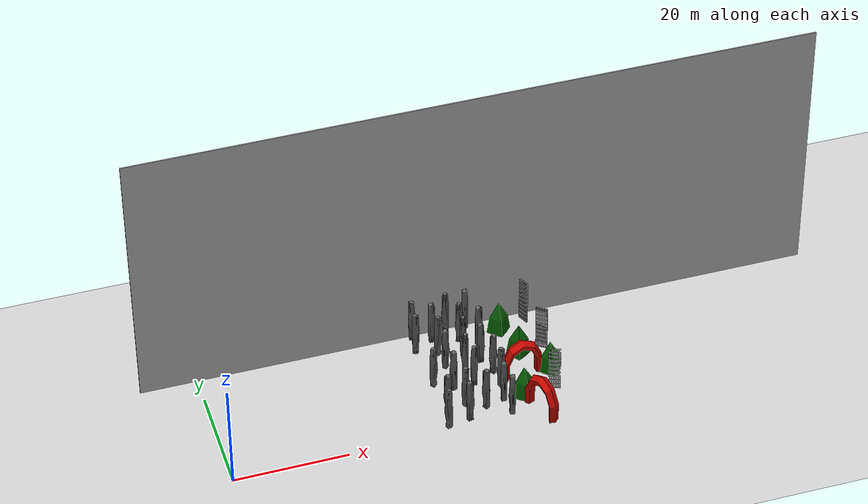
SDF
<sdf version="1.4">
 <world name="default">
  <model name="ground_plane">
   <static>1</static>
   <link name="link">
    <collision name="collision">
     <geometry><plane><normal>0 0 1</normal><size>1000 1000</size></plane></geometry>
     <surface>
      <contact><collide_bitmask>65535</collide_bitmask></contact>
      <friction><ode><mu>100</mu><mu2>50</mu2></ode></friction>
     </surface>
    </collision>
    <visual name="visual">
     <cast_shadows>0</cast_shadows>
     <geometry><plane><normal>0 0 1</normal><size>1000 1000</size></plane></geometry>
    </visual>
   </link>
  </model>
  <model name="wall_left">
   <static>1</static>
   <link name="link">
    <pose>0 0 25.0 0 0 0</pose>
    <collision name="collision"><geometry><box><size>120.0 0.2 50.0</size></box></geometry></collision>
    <visual name="visual">
     <cast_shadows>0</cast_shadows>
     <geometry><box><size>120.0 0.2 50.0</size></box></geometry>
    </visual>
   </link>
   <pose>50.0 25.0 0 0 0 0</pose>
  </model>
  <include><uri>model://sun</uri></include>
  <include>
   <name>columnSimple Stone138</name>
   <uri>model://Simple Stone</uri>
   <pose>37.91572570800781 1.6116981506347656 0 0 0 1.9437472101</pose>
   <static>true</static>
  </include>
  <include>
   <name>columnSimple Stone139</name>
   <uri>model://Simple Stone</uri>
   <pose>38.768402099609375 5.009853363037109 0 0 0 0.507222631463</pose>
   <static>true</static>
  </include>
  <include>
   <name>columnSimple Stone140</name>
   <uri>model://Simple Stone</uri>
   <pose>38.34856033325195 12.01529312133789 0 0 0 3.84182032126</pose>
   <static>true</static>
  </include>
  <include>
   <name>columnSimple Stone142</name>
   <uri>model://Simple Stone</uri>
   <pose>37.79338073730469 20.840438842773438 0 0 0 4.15083269572</pose>
   <static>true</static>
  </include>
  <include>
   <name>columnSimple Stone143</name>
   <uri>model://Simple Stone</uri>
   <pose>38.07575225830078 24.332542419433594 0 0 0 1.38869625464</pose>
   <static>true</static>
  </include>
  <include>
   <name>columnSimple Stone148</name>
   <uri>model://Simple Stone</uri>
   <pose>41.886016845703125 2.3336048126220703 0 0 0 5.01673169537</pose>
   <static>true</static>
  </include>
  <include>
   <name>columnSimple Stone149</name>
   <uri>model://Simple Stone</uri>
   <pose>41.39558029174805 10.286079406738281 0 0 0 0.220111407142</pose>
   <static>true</static>
  </include>
  <include>
   <name>columnSimple Stone150</name>
   <uri>model://Simple Stone</uri>
   <pose>41.6441535949707 15.833484649658203 0 0 0 5.52213010074</pose>
   <static>true</static>
  </include>
  <include>
   <name>columnSimple Stone151</name>
   <uri>model://Simple Stone</uri>
   <pose>41.34075164794922 19.32382583618164 0 0 0 3.60255119734</pose>
   <static>true</static>
  </include>
  <include>
   <name>columnSimple Stone152</name>
   <uri>model://Simple Stone</uri>
   <pose>41.23871994018555 22.82583999633789 0 0 0 4.7948572546</pose>
   <static>true</static>
  </include>
  <include>
   <name>columnSimple Stone158</name>
   <uri>model://Simple Stone</uri>
   <pose>42.17572784423828 5.825105667114258 0 0 0 3.61110821622</pose>
   <static>true</static>
  </include>
  <include>
   <name>columnSimple Stone159</name>
   <uri>model://Simple Stone</uri>
   <pose>44.53394317626953 13.852672576904297 0 0 0 2.5824397631</pose>
   <static>true</static>
  </include>
  <include>
   <name>columnSimple Stone160</name>
   <uri>model://Simple Stone</uri>
   <pose>44.22773742675781 24.653484344482422 0 0 0 2.55722843927</pose>
   <static>true</static>
  </include>
  <include>
   <name>columnSimple Stone165</name>
   <uri>model://Simple Stone</uri>
   <pose>45.344566345214844 4.330787658691406 0 0 0 0.578428658794</pose>
   <static>true</static>
  </include>
  <include>
   <name>columnSimple Stone166</name>
   <uri>model://Simple Stone</uri>
   <pose>45.10379409790039 10.395824432373047 0 0 0 4.45806937617</pose>
   <static>true</static>
  </include>
  <include>
   <name>columnSimple Stone167</name>
   <uri>model://Simple Stone</uri>
   <pose>45.453643798828125 18.03506851196289 0 0 0 2.88668355459</pose>
   <static>true</static>
  </include>
  <include>
   <name>columnSimple Stone168</name>
   <uri>model://Simple Stone</uri>
   <pose>45.798030853271484 21.521602630615234 0 0 0 2.45231163621</pose>
   <static>true</static>
  </include>
  <include>
   <name>columnSimple Stone173</name>
   <uri>model://Simple Stone</uri>
   <pose>49.15650177001953 1.7550048828125 0 0 0 6.17506014726</pose>
   <static>true</static>
  </include>
  <include>
   <name>columnSimple Stone174</name>
   <uri>model://Simple Stone</uri>
   <pose>48.73676681518555 5.233270645141602 0 0 0 6.24238044853</pose>
   <static>true</static>
  </include>
  <include>
   <name>columnSimple Stone175</name>
   <uri>model://Simple Stone</uri>
   <pose>49.35905456542969 8.68106460571289 0 0 0 3.58823346759</pose>
   <static>true</static>
  </include>
  <include>
   <name>columnSimple Stone176</name>
   <uri>model://Simple Stone</uri>
   <pose>49.03737258911133 12.16976547241211 0 0 0 0.789804092318</pose>
   <static>true</static>
  </include>
  <include>
   <name>columnSimple Stone177</name>
   <uri>model://Simple Stone</uri>
   <pose>47.826324462890625 15.457298278808594 0 0 0 4.83918449431</pose>
   <static>true</static>
  </include>
  <include>
   <name>columnSimple Stone178</name>
   <uri>model://Simple Stone</uri>
   <pose>48.77776336669922 19.678855895996094 0 0 0 5.06522713223</pose>
   <static>true</static>
  </include>
  <include>
   <name>columnSimple Stone179</name>
   <uri>model://Simple Stone</uri>
   <pose>47.72923278808594 24.53502655029297 0 0 0 6.26416250436</pose>
   <static>true</static>
  </include>
  <include>
   <name>mixedSimple Pyramid4</name>
   <uri>model://Simple Pyramid</uri>
   <pose>52.378965854644775 5.40666389465332 0 0 0 3.27412428061</pose>
   <static>true</static>
  </include>
  <include>
   <name>mixedSimple Pyramid5</name>
   <uri>model://Simple Pyramid</uri>
   <pose>53.11475992202759 22.111785888671875 0 0 0 3.16630532886</pose>
   <static>true</static>
  </include>
  <include>
   <name>mixedSimple U9</name>
   <uri>model://Simple U</uri>
   <pose>54.0579514503479 0.69488525390625 0 0 0 1.94537556084</pose>
   <static>true</static>
  </include>
  <include>
   <name>mixedSimple U10</name>
   <uri>model://Simple U</uri>
   <pose>53.575544595718384 10.266521453857422 0 0 0 0.126301481004</pose>
   <static>true</static>
  </include>
  <include>
   <name>mixedSimple Pyramid11</name>
   <uri>model://Simple Pyramid</uri>
   <pose>54.70700645446777 15.617908477783203 0 0 0 2.92536089931</pose>
   <static>true</static>
  </include>
  <include>
   <name>mixedfence_high16</name>
   <uri>model://fence_high</uri>
   <pose>58.73498725891113 4.830774307250977 0 0 0 1.2081727382</pose>
   <static>true</static>
  </include>
  <include>
   <name>mixedSimple Pyramid17</name>
   <uri>model://Simple Pyramid</uri>
   <pose>58.57789707183838 10.103748321533203 0 0 0 4.74789160868</pose>
   <static>true</static>
  </include>
  <include>
   <name>mixedfence_high18</name>
   <uri>model://fence_high</uri>
   <pose>59.672165870666504 14.987663269042969 0 0 0 0.945494005643</pose>
   <static>true</static>
  </include>
  <include>
   <name>mixedfence_high19</name>
   <uri>model://fence_high</uri>
   <pose>57.66843891143799 24.18880844116211 0 0 0 3.55020542962</pose>
   <static>true</static>
  </include>
 </world>
</sdf>
